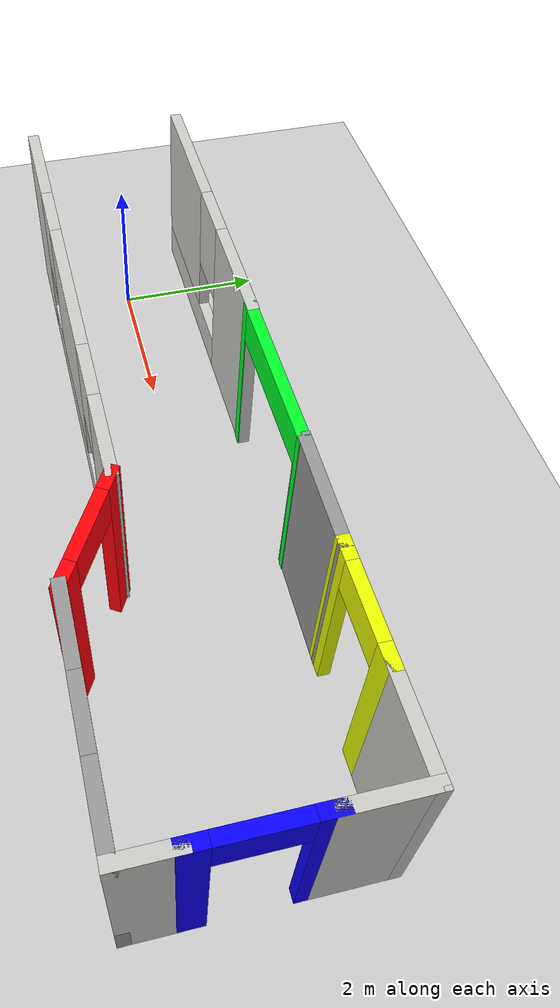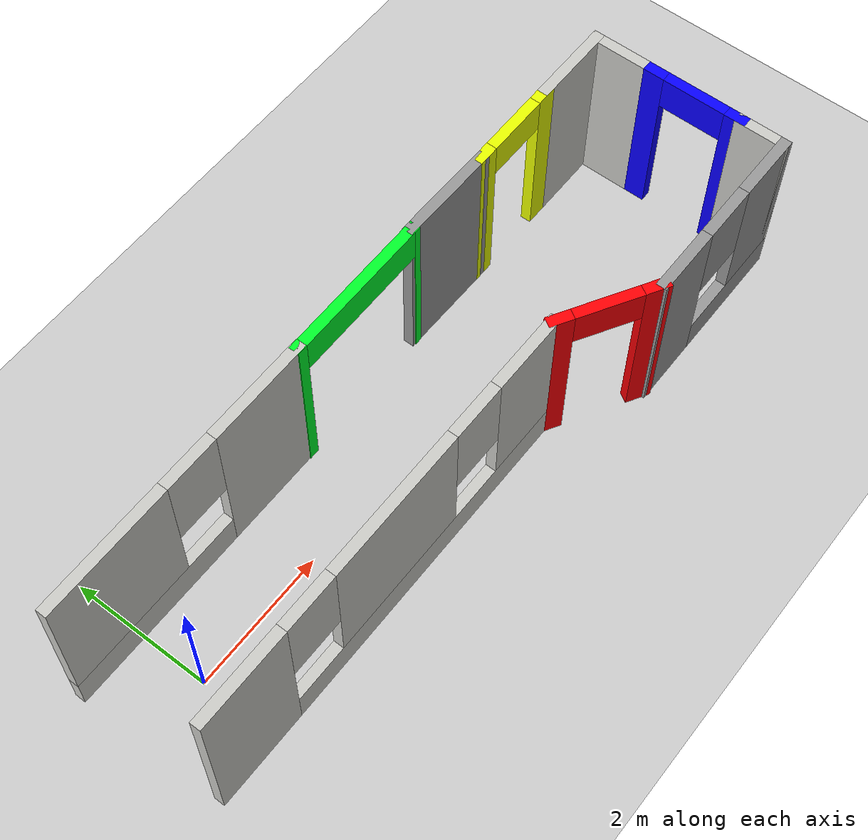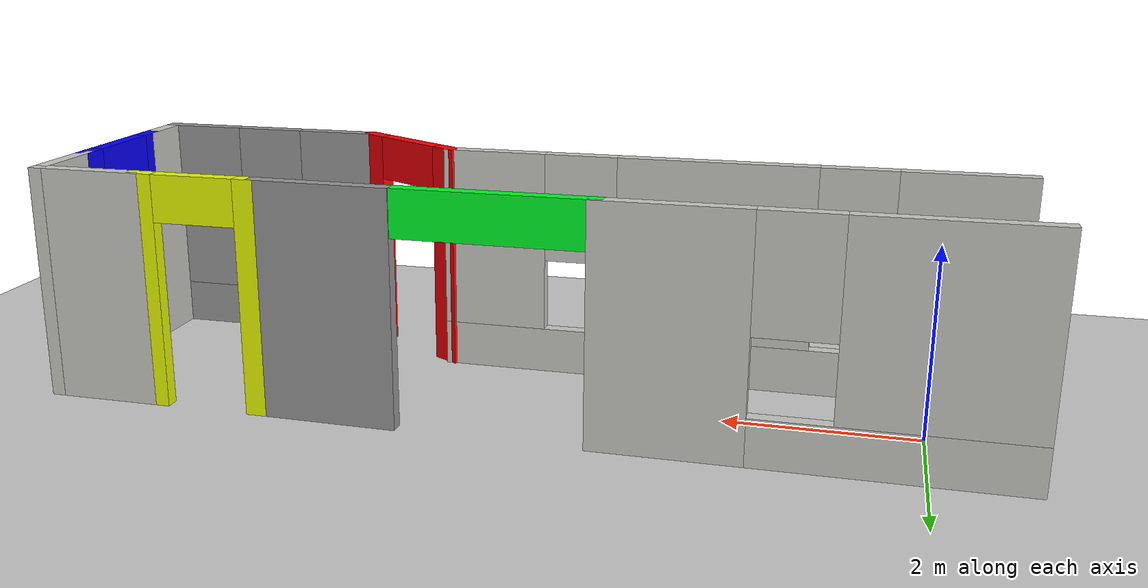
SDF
<sdf version="1.6">
 <world name="default">
  <light name="sun" type="directional">
   <pose>0 0 10 0 -0 0</pose>
   <diffuse>0.8 0.8 0.8 1</diffuse>
   <specular>0.1 0.1 0.1 1</specular>
   <attenuation>
    <range>1000</range>
    <constant>0.9</constant>
    <linear>0.01</linear>
    <quadratic>0.001</quadratic>
   </attenuation>
   <direction>-0.5 0.5 -1</direction>
  </light>
  <model name="ground_plane">
   <static>1</static>
   <link name="link">
    <collision name="collision">
     <geometry><plane><normal>0 0 1</normal><size>100 100</size></plane></geometry>
     <surface><friction><ode><mu>100</mu><mu2>50</mu2></ode></friction></surface>
    </collision>
    <visual name="visual">
     <cast_shadows>0</cast_shadows>
     <geometry><plane><normal>0 0 1</normal><size>100 100</size></plane></geometry>
     <material>
      <script><uri>file://media/materials/scripts/gazebo.material</uri><name>Gazebo/Grey</name></script>
     </material>
    </visual>
   </link>
  </model>
  <gravity>0 0 -9.8</gravity>
  <magnetic_field>6e-06 2.3e-05 -4.2e-05</magnetic_field>
  <atmosphere type="adiabatic"/>
  <physics name="default_physics" default="0" type="ode">
   <max_step_size>0.001</max_step_size>
   <real_time_factor>1</real_time_factor>
   <real_time_update_rate>1000</real_time_update_rate>
  </physics>
  <scene><ambient>0.4 0.4 0.4 1</ambient><background>0.7 0.7 0.7 1</background><shadows>1</shadows></scene>
  <spherical_coordinates>
   <surface_model>EARTH_WGS84</surface_model>
   <latitude_deg>0</latitude_deg>
   <longitude_deg>0</longitude_deg>
   <elevation>0</elevation>
   <heading_deg>0</heading_deg>
  </spherical_coordinates>
  <model name="corridor_with_colored_doors">
   <pose>4.04793 -0.406518 0 0 -0 0</pose>
   <link name="Wall_0">
    <pose>-1.87913 -0.671699 0 0 -0 0</pose>
    <visual name="Wall_0_Visual_0">
     <pose>-2.44393 0 1.25 0 -0 0</pose>
     <geometry><box><size>1.36213 0.15 2.5</size></box></geometry>
     <material>
      <script><uri>file://media/materials/scripts/gazebo.material</uri><name>Gazebo/CeilingTiled</name></script>
      <ambient>1 1 1 1</ambient>
     </material>
    </visual>
    <collision name="Wall_0_Collision_0">
     <geometry><box><size>1.36213 0.15 2.5</size></box></geometry>
     <pose>-2.44393 0 1.25 0 -0 0</pose>
    </collision>
    <visual name="Wall_0_Visual_1">
     <pose>0.681067 0 0.25 0 -0 0</pose>
     <geometry><box><size>4.88787 0.15 0.5</size></box></geometry>
     <material>
      <script><uri>file://media/materials/scripts/gazebo.material</uri><name>Gazebo/CeilingTiled</name></script>
      <ambient>1 1 1 1</ambient>
     </material>
    </visual>
    <collision name="Wall_0_Collision_1">
     <geometry><box><size>4.88787 0.15 0.5</size></box></geometry>
     <pose>0.681067 0 0.25 0 -0 0</pose>
    </collision>
    <visual name="Wall_0_Visual_2">
     <pose>0.102536 0 1.5 0 -0 0</pose>
     <geometry><box><size>2.13081 0.15 2</size></box></geometry>
     <material>
      <script><uri>file://media/materials/scripts/gazebo.material</uri><name>Gazebo/CeilingTiled</name></script>
      <ambient>1 1 1 1</ambient>
     </material>
    </visual>
    <collision name="Wall_0_Collision_2">
     <geometry><box><size>2.13081 0.15 2</size></box></geometry>
     <pose>0.102536 0 1.5 0 -0 0</pose>
    </collision>
    <visual name="Wall_0_Visual_3">
     <pose>2.54647 0 1.5 0 -0 0</pose>
     <geometry><box><size>1.15706 0.15 2</size></box></geometry>
     <material>
      <script><uri>file://media/materials/scripts/gazebo.material</uri><name>Gazebo/CeilingTiled</name></script>
      <ambient>1 1 1 1</ambient>
     </material>
    </visual>
    <collision name="Wall_0_Collision_3">
     <geometry><box><size>1.15706 0.15 2</size></box></geometry>
     <pose>2.54647 0 1.5 0 -0 0</pose>
    </collision>
    <visual name="Wall_0_Visual_4">
     <pose>-1.36287 0 1.9 0 -0 0</pose>
     <geometry><box><size>0.8 0.15 1.2</size></box></geometry>
     <material>
      <script><uri>file://media/materials/scripts/gazebo.material</uri><name>Gazebo/CeilingTiled</name></script>
      <ambient>1 1 1 1</ambient>
     </material>
    </visual>
    <collision name="Wall_0_Collision_4">
     <geometry><box><size>0.8 0.15 1.2</size></box></geometry>
     <pose>-1.36287 0 1.9 0 -0 0</pose>
    </collision>
    <visual name="Wall_0_Visual_5">
     <pose>1.56794 0 1.9 0 -0 0</pose>
     <geometry><box><size>0.8 0.15 1.2</size></box></geometry>
     <material>
      <script><uri>file://media/materials/scripts/gazebo.material</uri><name>Gazebo/CeilingTiled</name></script>
      <ambient>1 1 1 1</ambient>
     </material>
    </visual>
    <collision name="Wall_0_Collision_5">
     <geometry><box><size>0.8 0.15 1.2</size></box></geometry>
     <pose>1.56794 0 1.9 0 -0 0</pose>
    </collision>
   </link>
   <link name="Wall_1">
    <pose>1.78543 -1.0342 0 0 0 -0.53292</pose>
    <visual name="Wall_1_Visual_0">
     <pose>-0.623525 0 1.25 0 -0 0</pose>
     <geometry><box><size>0.329974 0.15 2.5</size></box></geometry>
     <material>
      <script><uri>file://media/materials/scripts/gazebo.material</uri><name>Gazebo/Grey</name></script>
      <ambient>1 0 0.0156863 1</ambient>
     </material>
    </visual>
    <collision name="Wall_1_Collision_0">
     <geometry><box><size>0.329974 0.15 2.5</size></box></geometry>
     <pose>-0.623525 0 1.25 0 -0 0</pose>
    </collision>
    <visual name="Wall_1_Visual_1">
     <pose>0.614987 0 1.25 0 -0 0</pose>
     <geometry><box><size>0.347049 0.15 2.5</size></box></geometry>
     <material>
      <script><uri>file://media/materials/scripts/gazebo.material</uri><name>Gazebo/Grey</name></script>
      <ambient>1 0 0.0156863 1</ambient>
     </material>
    </visual>
    <collision name="Wall_1_Collision_1">
     <geometry><box><size>0.347049 0.15 2.5</size></box></geometry>
     <pose>0.614987 0 1.25 0 -0 0</pose>
    </collision>
    <visual name="Wall_1_Visual_2">
     <pose>-0.008538 0 2.25 0 -0 0</pose>
     <geometry><box><size>0.9 0.15 0.5</size></box></geometry>
     <material>
      <script><uri>file://media/materials/scripts/gazebo.material</uri><name>Gazebo/Grey</name></script>
      <ambient>1 0 0.0156863 1</ambient>
     </material>
    </visual>
    <collision name="Wall_1_Collision_2">
     <geometry><box><size>0.9 0.15 0.5</size></box></geometry>
     <pose>-0.008538 0 2.25 0 -0 0</pose>
    </collision>
   </link>
   <link name="Wall_11">
    <collision name="Wall_11_Collision">
     <geometry><box><size>1 0.15 2.5</size></box></geometry>
     <pose>0 0 1.25 0 -0 0</pose>
    </collision>
    <visual name="Wall_11_Visual">
     <pose>0 0 1.25 0 -0 0</pose>
     <geometry><box><size>1 0.15 2.5</size></box></geometry>
     <material>
      <script><uri>file://media/materials/scripts/gazebo.material</uri><name>Gazebo/CeilingTiled</name></script>
      <ambient>1 1 1 1</ambient>
     </material>
    </visual>
    <pose>5 0.978301 0 0 -0 1.5708</pose>
   </link>
   <link name="Wall_12">
    <collision name="Wall_12_Collision">
     <geometry><box><size>1.25 0.15 2.5</size></box></geometry>
     <pose>0 0 1.25 0 -0 0</pose>
    </collision>
    <visual name="Wall_12_Visual">
     <pose>0 0 1.25 0 -0 0</pose>
     <geometry><box><size>1.25 0.15 2.5</size></box></geometry>
     <material>
      <script><uri>file://media/materials/scripts/gazebo.material</uri><name>Gazebo/CeilingTiled</name></script>
      <ambient>1 1 1 1</ambient>
     </material>
    </visual>
    <pose>4.45 1.4033 0 0 -0 3.14159</pose>
   </link>
   <link name="Wall_13">
    <pose>3.225 1.4033 0 0 -0 3.14159</pose>
    <visual name="Wall_13_Visual_0">
     <pose>-0.599493 0 1.25 0 -0 0</pose>
     <geometry><box><size>0.301015 0.15 2.5</size></box></geometry>
     <material>
      <script><uri>file://media/materials/scripts/gazebo.material</uri><name>Gazebo/Grey</name></script>
      <ambient>0.917647 1 0 1</ambient>
     </material>
    </visual>
    <collision name="Wall_13_Collision_0">
     <geometry><box><size>0.301015 0.15 2.5</size></box></geometry>
     <pose>-0.599493 0 1.25 0 -0 0</pose>
    </collision>
    <visual name="Wall_13_Visual_1">
     <pose>0.600507 0 1.25 0 -0 0</pose>
     <geometry><box><size>0.298985 0.15 2.5</size></box></geometry>
     <material>
      <script><uri>file://media/materials/scripts/gazebo.material</uri><name>Gazebo/Grey</name></script>
      <ambient>0.917647 1 0 1</ambient>
     </material>
    </visual>
    <collision name="Wall_13_Collision_1">
     <geometry><box><size>0.298985 0.15 2.5</size></box></geometry>
     <pose>0.600507 0 1.25 0 -0 0</pose>
    </collision>
    <visual name="Wall_13_Visual_2">
     <pose>0.001015 0 2.25 0 -0 0</pose>
     <geometry><box><size>0.9 0.15 0.5</size></box></geometry>
     <material>
      <script><uri>file://media/materials/scripts/gazebo.material</uri><name>Gazebo/Grey</name></script>
      <ambient>0.917647 1 0 1</ambient>
     </material>
    </visual>
    <collision name="Wall_13_Collision_2">
     <geometry><box><size>0.9 0.15 0.5</size></box></geometry>
     <pose>0.001015 0 2.25 0 -0 0</pose>
    </collision>
   </link>
   <link name="Wall_14">
    <collision name="Wall_14_Collision">
     <geometry><box><size>1.5 0.15 2.5</size></box></geometry>
     <pose>0 0 1.25 0 -0 0</pose>
    </collision>
    <visual name="Wall_14_Visual">
     <pose>0 0 1.25 0 -0 0</pose>
     <geometry><box><size>1.5 0.15 2.5</size></box></geometry>
     <material>
      <script><uri>file://media/materials/scripts/gazebo.material</uri><name>Gazebo/Grey</name></script>
      <ambient>1 1 1 1</ambient>
     </material>
    </visual>
    <pose>1.875 1.4133 0 0 -0 3.12678</pose>
   </link>
   <link name="Wall_15">
    <pose>0.15 1.4133 0 0 -0 3.14159</pose>
    <visual name="Wall_15_Visual_0">
     <pose>-1.07449 0 1.25 0 -0 0</pose>
     <geometry><box><size>0.101014 0.15 2.5</size></box></geometry>
     <material>
      <script><uri>file://media/materials/scripts/gazebo.material</uri><name>Gazebo/Grey</name></script>
      <ambient>0 1 0.164706 1</ambient>
     </material>
    </visual>
    <collision name="Wall_15_Collision_0">
     <geometry><box><size>0.101014 0.15 2.5</size></box></geometry>
     <pose>-1.07449 0 1.25 0 -0 0</pose>
    </collision>
    <visual name="Wall_15_Visual_1">
     <pose>1.05051 0 1.25 0 -0 0</pose>
     <geometry><box><size>0.148986 0.15 2.5</size></box></geometry>
     <material>
      <script><uri>file://media/materials/scripts/gazebo.material</uri><name>Gazebo/Grey</name></script>
      <ambient>0 1 0.164706 1</ambient>
     </material>
    </visual>
    <collision name="Wall_15_Collision_1">
     <geometry><box><size>0.148986 0.15 2.5</size></box></geometry>
     <pose>1.05051 0 1.25 0 -0 0</pose>
    </collision>
    <visual name="Wall_15_Visual_2">
     <pose>-0.023986 0 2.25 0 -0 0</pose>
     <geometry><box><size>2 0.15 0.5</size></box></geometry>
     <material>
      <script><uri>file://media/materials/scripts/gazebo.material</uri><name>Gazebo/Grey</name></script>
      <ambient>0 1 0.164706 1</ambient>
     </material>
    </visual>
    <collision name="Wall_15_Collision_2">
     <geometry><box><size>2 0.15 0.5</size></box></geometry>
     <pose>-0.023986 0 2.25 0 -0 0</pose>
    </collision>
   </link>
   <link name="Wall_16">
    <pose>-2.95 1.4233 0 0 -0 3.14159</pose>
    <visual name="Wall_16_Visual_0">
     <pose>-1.34882 0 1.25 0 -0 0</pose>
     <geometry><box><size>1.55235 0.15 2.5</size></box></geometry>
     <material>
      <script><uri>file://media/materials/scripts/gazebo.material</uri><name>Gazebo/CeilingTiled</name></script>
      <ambient>1 1 1 1</ambient>
     </material>
    </visual>
    <collision name="Wall_16_Collision_0">
     <geometry><box><size>1.55235 0.15 2.5</size></box></geometry>
     <pose>-1.34882 0 1.25 0 -0 0</pose>
    </collision>
    <visual name="Wall_16_Visual_1">
     <pose>0.776178 0 0.25 0 -0 0</pose>
     <geometry><box><size>2.69765 0.15 0.5</size></box></geometry>
     <material>
      <script><uri>file://media/materials/scripts/gazebo.material</uri><name>Gazebo/CeilingTiled</name></script>
      <ambient>1 1 1 1</ambient>
     </material>
    </visual>
    <collision name="Wall_16_Collision_1">
     <geometry><box><size>2.69765 0.15 0.5</size></box></geometry>
     <pose>0.776178 0 0.25 0 -0 0</pose>
    </collision>
    <visual name="Wall_16_Visual_2">
     <pose>1.17618 0 1.5 0 -0 0</pose>
     <geometry><box><size>1.89765 0.15 2</size></box></geometry>
     <material>
      <script><uri>file://media/materials/scripts/gazebo.material</uri><name>Gazebo/CeilingTiled</name></script>
      <ambient>1 1 1 1</ambient>
     </material>
    </visual>
    <collision name="Wall_16_Collision_2">
     <geometry><box><size>1.89765 0.15 2</size></box></geometry>
     <pose>1.17618 0 1.5 0 -0 0</pose>
    </collision>
    <visual name="Wall_16_Visual_3">
     <pose>-0.172645 0 1.9 0 -0 0</pose>
     <geometry><box><size>0.8 0.15 1.2</size></box></geometry>
     <material>
      <script><uri>file://media/materials/scripts/gazebo.material</uri><name>Gazebo/CeilingTiled</name></script>
      <ambient>1 1 1 1</ambient>
     </material>
    </visual>
    <collision name="Wall_16_Collision_3">
     <geometry><box><size>0.8 0.15 1.2</size></box></geometry>
     <pose>-0.172645 0 1.9 0 -0 0</pose>
    </collision>
   </link>
   <link name="Wall_2">
    <pose>3.7 -1.3967 0 0 -0 0</pose>
    <visual name="Wall_2_Visual_0">
     <pose>-0.885507 0 1.25 0 -0 0</pose>
     <geometry><box><size>0.978985 0.15 2.5</size></box></geometry>
     <material>
      <script><uri>file://media/materials/scripts/gazebo.material</uri><name>Gazebo/Grey</name></script>
      <ambient>1 1 1 1</ambient>
     </material>
    </visual>
    <collision name="Wall_2_Collision_0">
     <geometry><box><size>0.978985 0.15 2.5</size></box></geometry>
     <pose>-0.885507 0 1.25 0 -0 0</pose>
    </collision>
    <visual name="Wall_2_Visual_1">
     <pose>0.489493 0 0.25 0 -0 0</pose>
     <geometry><box><size>1.77102 0.15 0.5</size></box></geometry>
     <material>
      <script><uri>file://media/materials/scripts/gazebo.material</uri><name>Gazebo/Grey</name></script>
      <ambient>1 1 1 1</ambient>
     </material>
    </visual>
    <collision name="Wall_2_Collision_1">
     <geometry><box><size>1.77102 0.15 0.5</size></box></geometry>
     <pose>0.489493 0 0.25 0 -0 0</pose>
    </collision>
    <visual name="Wall_2_Visual_2">
     <pose>0.889493 0 1.5 0 -0 0</pose>
     <geometry><box><size>0.971015 0.15 2</size></box></geometry>
     <material>
      <script><uri>file://media/materials/scripts/gazebo.material</uri><name>Gazebo/Grey</name></script>
      <ambient>1 1 1 1</ambient>
     </material>
    </visual>
    <collision name="Wall_2_Collision_2">
     <geometry><box><size>0.971015 0.15 2</size></box></geometry>
     <pose>0.889493 0 1.5 0 -0 0</pose>
    </collision>
    <visual name="Wall_2_Visual_3">
     <pose>0.003985 0 1.9 0 -0 0</pose>
     <geometry><box><size>0.8 0.15 1.2</size></box></geometry>
     <material>
      <script><uri>file://media/materials/scripts/gazebo.material</uri><name>Gazebo/Grey</name></script>
      <ambient>1 1 1 1</ambient>
     </material>
    </visual>
    <collision name="Wall_2_Collision_3">
     <geometry><box><size>0.8 0.15 1.2</size></box></geometry>
     <pose>0.003985 0 1.9 0 -0 0</pose>
    </collision>
   </link>
   <link name="Wall_5">
    <collision name="Wall_5_Collision">
     <geometry><box><size>0.75 0.15 2.5</size></box></geometry>
     <pose>0 0 1.25 0 -0 0</pose>
    </collision>
    <visual name="Wall_5_Visual">
     <pose>0 0 1.25 0 -0 0</pose>
     <geometry><box><size>0.75 0.15 2.5</size></box></geometry>
     <material>
      <script><uri>file://media/materials/scripts/gazebo.material</uri><name>Gazebo/CeilingTiled</name></script>
      <ambient>1 1 1 1</ambient>
     </material>
    </visual>
    <pose>5 -1.0967 0 0 -0 1.5708</pose>
   </link>
   <link name="Wall_9">
    <pose>5 -0.121699 0 0 -0 1.5708</pose>
    <visual name="Wall_9_Visual_0">
     <pose>-0.598888 0 1.25 0 -0 0</pose>
     <geometry><box><size>0.302224 0.15 2.5</size></box></geometry>
     <material>
      <script><uri>file://media/materials/scripts/gazebo.material</uri><name>Gazebo/Grey</name></script>
      <ambient>0.0313726 0 1 1</ambient>
     </material>
    </visual>
    <collision name="Wall_9_Collision_0">
     <geometry><box><size>0.302224 0.15 2.5</size></box></geometry>
     <pose>-0.598888 0 1.25 0 -0 0</pose>
    </collision>
    <visual name="Wall_9_Visual_1">
     <pose>0.601112 0 1.25 0 -0 0</pose>
     <geometry><box><size>0.297776 0.15 2.5</size></box></geometry>
     <material>
      <script><uri>file://media/materials/scripts/gazebo.material</uri><name>Gazebo/Grey</name></script>
      <ambient>0.0313726 0 1 1</ambient>
     </material>
    </visual>
    <collision name="Wall_9_Collision_1">
     <geometry><box><size>0.297776 0.15 2.5</size></box></geometry>
     <pose>0.601112 0 1.25 0 -0 0</pose>
    </collision>
    <visual name="Wall_9_Visual_2">
     <pose>0.002224 0 2.25 0 -0 0</pose>
     <geometry><box><size>0.9 0.15 0.5</size></box></geometry>
     <material>
      <script><uri>file://media/materials/scripts/gazebo.material</uri><name>Gazebo/Grey</name></script>
      <ambient>0.0313726 0 1 1</ambient>
     </material>
    </visual>
    <collision name="Wall_9_Collision_2">
     <geometry><box><size>0.9 0.15 0.5</size></box></geometry>
     <pose>0.002224 0 2.25 0 -0 0</pose>
    </collision>
   </link>
   <static>1</static>
  </model>
 </world>
</sdf>
